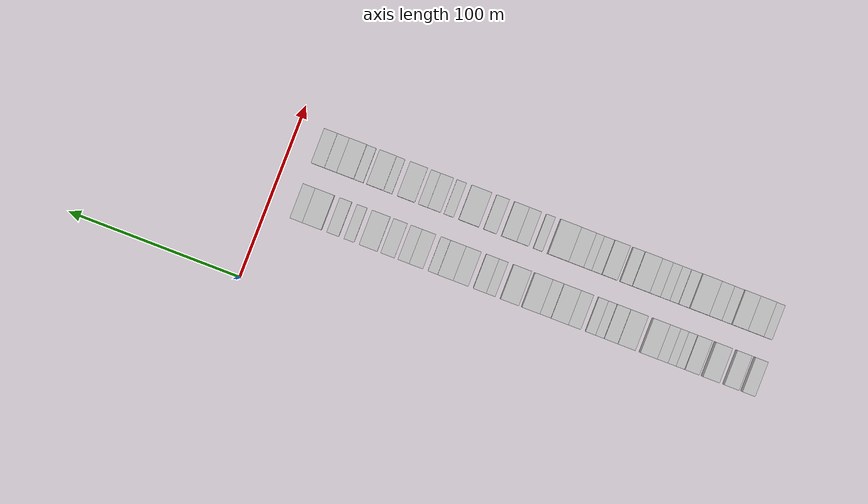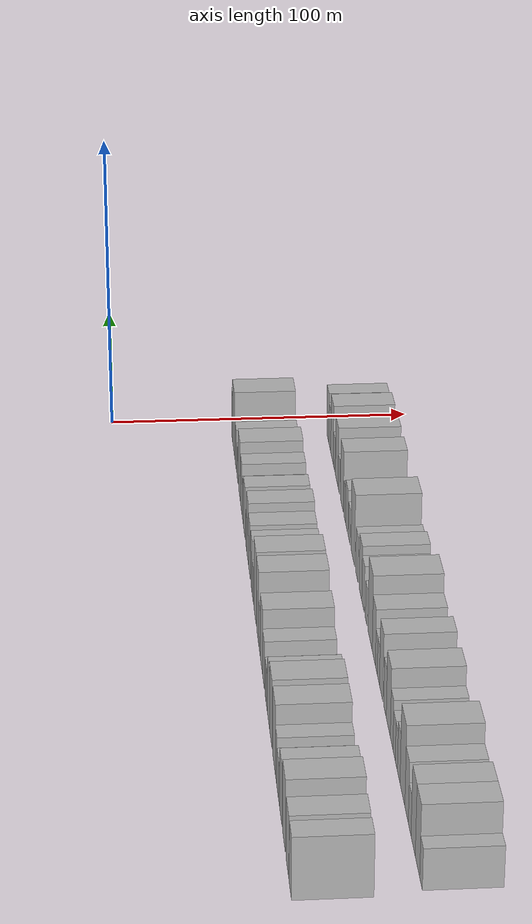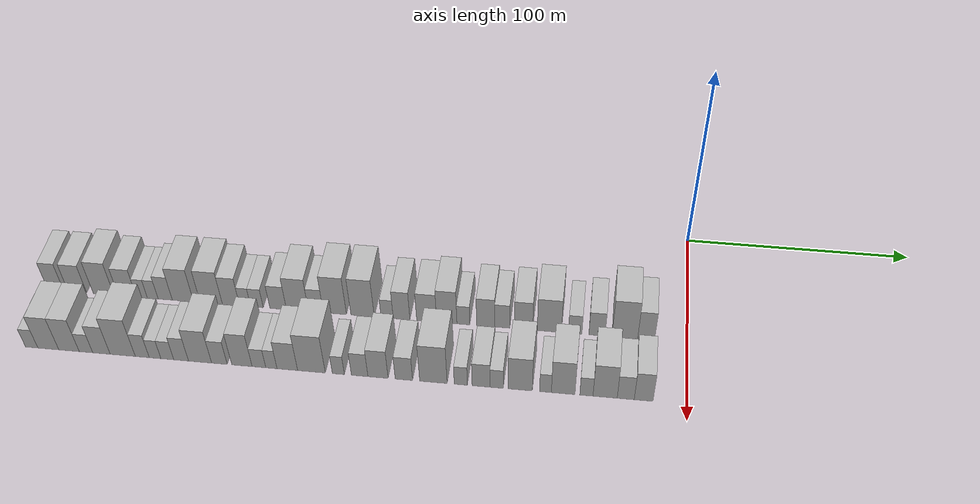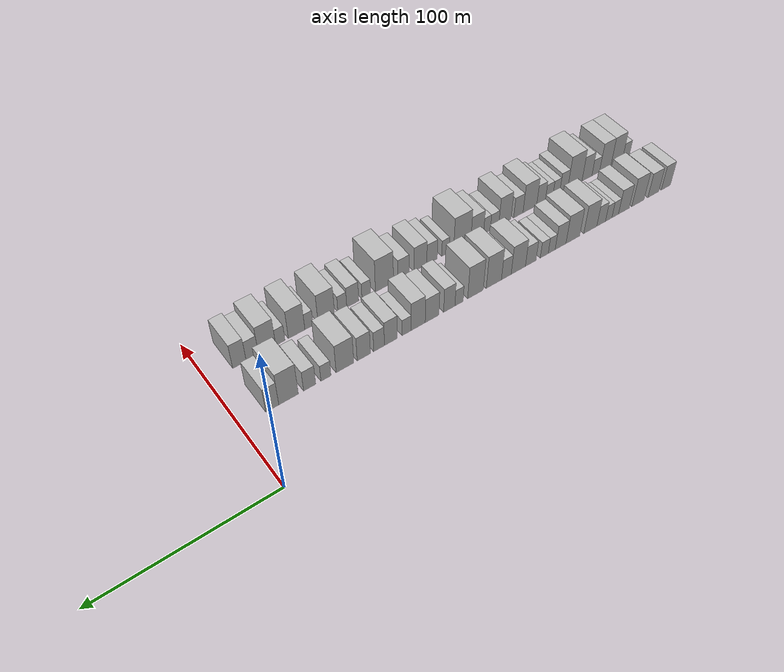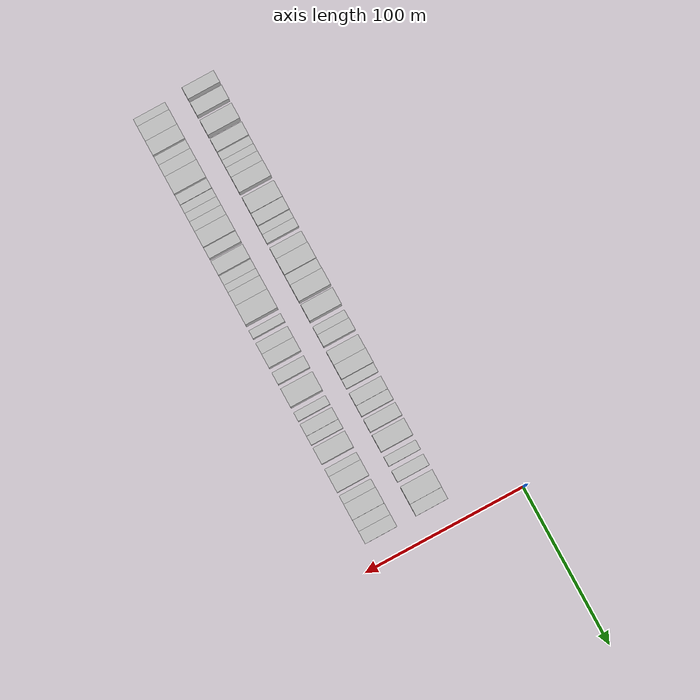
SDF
<sdf version="1.6">
 <world name="default">
  <model name="building_1">
   <static>1</static>
   <pose>50.0000 -280.3439 0 0.000000 0.000000 0.000000</pose>
   <link name="link">
    <pose>0 0 9.00 0 0 0</pose>
    <collision name="collision"><geometry><box><size>20.0000 7.3122 18.0000</size></box></geometry></collision>
    <visual name="visual">
     <cast_shadows>0</cast_shadows>
     <geometry><box><size>20.0000 7.3122 18.0000</size></box></geometry>
     <material>
      <script>
       <uri>model://HANNAS_wall/materials/scripts</uri>
       <uri>model://HANNAS_wall/materials/textures</uri>
       <name>vrc/HANNAS_wall</name>
      </script>
     </material>
    </visual>
   </link>
  </model>
  <model name="building_2">
   <static>1</static>
   <pose>50.0000 -270.4074 0 0.000000 0.000000 0.000000</pose>
   <link name="link">
    <pose>0 0 9.00 0 0 0</pose>
    <collision name="collision"><geometry><box><size>20.0000 8.5608 18.0000</size></box></geometry></collision>
    <visual name="visual">
     <cast_shadows>0</cast_shadows>
     <geometry><box><size>20.0000 8.5608 18.0000</size></box></geometry>
     <material>
      <script>
       <uri>model://HANNAS_wall/materials/scripts</uri>
       <uri>model://HANNAS_wall/materials/textures</uri>
       <name>vrc/HANNAS_wall</name>
      </script>
     </material>
    </visual>
   </link>
  </model>
  <model name="building_3">
   <static>1</static>
   <pose>50.0000 -258.3711 0 0.000000 0.000000 0.000000</pose>
   <link name="link">
    <pose>0 0 10.50 0 0 0</pose>
    <collision name="collision"><geometry><box><size>20.0000 9.5118 21.0000</size></box></geometry></collision>
    <visual name="visual">
     <cast_shadows>0</cast_shadows>
     <geometry><box><size>20.0000 9.5118 21.0000</size></box></geometry>
     <material>
      <script>
       <uri>model://HANNAS_wall/materials/scripts</uri>
       <uri>model://HANNAS_wall/materials/textures</uri>
       <name>vrc/HANNAS_wall</name>
      </script>
     </material>
    </visual>
   </link>
  </model>
  <model name="building_4">
   <static>1</static>
   <pose>50.0000 -247.4853 0 0.000000 0.000000 0.000000</pose>
   <link name="link">
    <pose>0 0 9.00 0 0 0</pose>
    <collision name="collision"><geometry><box><size>20.0000 8.2598 18.0000</size></box></geometry></collision>
    <visual name="visual">
     <cast_shadows>0</cast_shadows>
     <geometry><box><size>20.0000 8.2598 18.0000</size></box></geometry>
     <material>
      <script>
       <uri>model://HANNAS_wall/materials/scripts</uri>
       <uri>model://HANNAS_wall/materials/textures</uri>
       <name>vrc/HANNAS_wall</name>
      </script>
     </material>
    </visual>
   </link>
  </model>
  <model name="building_5">
   <static>1</static>
   <pose>50.0000 -240.8686 0 0.000000 0.000000 0.000000</pose>
   <link name="link">
    <pose>0 0 6.00 0 0 0</pose>
    <collision name="collision"><geometry><box><size>20.0000 4.9736 12.0000</size></box></geometry></collision>
    <visual name="visual">
     <cast_shadows>0</cast_shadows>
     <geometry><box><size>20.0000 4.9736 12.0000</size></box></geometry>
     <material>
      <script>
       <uri>model://HANNAS_wall/materials/scripts</uri>
       <uri>model://HANNAS_wall/materials/textures</uri>
       <name>vrc/HANNAS_wall</name>
      </script>
     </material>
    </visual>
   </link>
  </model>
  <model name="building_6">
   <static>1</static>
   <pose>50.0000 -235.9490 0 0.000000 0.000000 0.000000</pose>
   <link name="link">
    <pose>0 0 6.00 0 0 0</pose>
    <collision name="collision"><geometry><box><size>20.0000 4.8657 12.0000</size></box></geometry></collision>
    <visual name="visual">
     <cast_shadows>0</cast_shadows>
     <geometry><box><size>20.0000 4.8657 12.0000</size></box></geometry>
     <material>
      <script>
       <uri>model://HANNAS_wall/materials/scripts</uri>
       <uri>model://HANNAS_wall/materials/textures</uri>
       <name>vrc/HANNAS_wall</name>
      </script>
     </material>
    </visual>
   </link>
  </model>
  <model name="building_7">
   <static>1</static>
   <pose>50.0000 -230.2777 0 0.000000 0.000000 0.000000</pose>
   <link name="link">
    <pose>0 0 7.50 0 0 0</pose>
    <collision name="collision"><geometry><box><size>20.0000 6.4767 15.0000</size></box></geometry></collision>
    <visual name="visual">
     <cast_shadows>0</cast_shadows>
     <geometry><box><size>20.0000 6.4767 15.0000</size></box></geometry>
     <material>
      <script>
       <uri>model://HANNAS_wall/materials/scripts</uri>
       <uri>model://HANNAS_wall/materials/textures</uri>
       <name>vrc/HANNAS_wall</name>
      </script>
     </material>
    </visual>
   </link>
  </model>
  <model name="building_8">
   <static>1</static>
   <pose>50.0000 -222.2050 0 0.000000 0.000000 0.000000</pose>
   <link name="link">
    <pose>0 0 10.50 0 0 0</pose>
    <collision name="collision"><geometry><box><size>20.0000 9.6688 21.0000</size></box></geometry></collision>
    <visual name="visual">
     <cast_shadows>0</cast_shadows>
     <geometry><box><size>20.0000 9.6688 21.0000</size></box></geometry>
     <material>
      <script>
       <uri>model://HANNAS_wall/materials/scripts</uri>
       <uri>model://HANNAS_wall/materials/textures</uri>
       <name>vrc/HANNAS_wall</name>
      </script>
     </material>
    </visual>
   </link>
  </model>
  <model name="building_9">
   <static>1</static>
   <pose>50.0000 -209.3454 0 0.000000 0.000000 0.000000</pose>
   <link name="link">
    <pose>0 0 10.50 0 0 0</pose>
    <collision name="collision"><geometry><box><size>20.0000 10.0503 21.0000</size></box></geometry></collision>
    <visual name="visual">
     <cast_shadows>0</cast_shadows>
     <geometry><box><size>20.0000 10.0503 21.0000</size></box></geometry>
     <material>
      <script>
       <uri>model://HANNAS_wall/materials/scripts</uri>
       <uri>model://HANNAS_wall/materials/textures</uri>
       <name>vrc/HANNAS_wall</name>
      </script>
     </material>
    </visual>
   </link>
  </model>
  <model name="building_10">
   <static>1</static>
   <pose>50.0000 -200.4345 0 0.000000 0.000000 0.000000</pose>
   <link name="link">
    <pose>0 0 9.00 0 0 0</pose>
    <collision name="collision"><geometry><box><size>20.0000 7.7715 18.0000</size></box></geometry></collision>
    <visual name="visual">
     <cast_shadows>0</cast_shadows>
     <geometry><box><size>20.0000 7.7715 18.0000</size></box></geometry>
     <material>
      <script>
       <uri>model://HANNAS_wall/materials/scripts</uri>
       <uri>model://HANNAS_wall/materials/textures</uri>
       <name>vrc/HANNAS_wall</name>
      </script>
     </material>
    </visual>
   </link>
  </model>
  <model name="building_11">
   <static>1</static>
   <pose>50.0000 -194.0659 0 0.000000 0.000000 0.000000</pose>
   <link name="link">
    <pose>0 0 6.00 0 0 0</pose>
    <collision name="collision"><geometry><box><size>20.0000 4.9657 12.0000</size></box></geometry></collision>
    <visual name="visual">
     <cast_shadows>0</cast_shadows>
     <geometry><box><size>20.0000 4.9657 12.0000</size></box></geometry>
     <material>
      <script>
       <uri>model://HANNAS_wall/materials/scripts</uri>
       <uri>model://HANNAS_wall/materials/textures</uri>
       <name>vrc/HANNAS_wall</name>
      </script>
     </material>
    </visual>
   </link>
  </model>
  <model name="building_12">
   <static>1</static>
   <pose>50.0000 -188.7464 0 0.000000 0.000000 0.000000</pose>
   <link name="link">
    <pose>0 0 6.00 0 0 0</pose>
    <collision name="collision"><geometry><box><size>20.0000 5.6733 12.0000</size></box></geometry></collision>
    <visual name="visual">
     <cast_shadows>0</cast_shadows>
     <geometry><box><size>20.0000 5.6733 12.0000</size></box></geometry>
     <material>
      <script>
       <uri>model://HANNAS_wall/materials/scripts</uri>
       <uri>model://HANNAS_wall/materials/textures</uri>
       <name>vrc/HANNAS_wall</name>
      </script>
     </material>
    </visual>
   </link>
  </model>
  <model name="building_13">
   <static>1</static>
   <pose>50.0000 -179.1969 0 0.000000 0.000000 0.000000</pose>
   <link name="link">
    <pose>0 0 7.50 0 0 0</pose>
    <collision name="collision"><geometry><box><size>20.0000 7.4257 15.0000</size></box></geometry></collision>
    <visual name="visual">
     <cast_shadows>0</cast_shadows>
     <geometry><box><size>20.0000 7.4257 15.0000</size></box></geometry>
     <material>
      <script>
       <uri>model://HANNAS_wall/materials/scripts</uri>
       <uri>model://HANNAS_wall/materials/textures</uri>
       <name>vrc/HANNAS_wall</name>
      </script>
     </material>
    </visual>
   </link>
  </model>
  <model name="building_14">
   <static>1</static>
   <pose>50.0000 -170.5419 0 0.000000 0.000000 0.000000</pose>
   <link name="link">
    <pose>0 0 10.50 0 0 0</pose>
    <collision name="collision"><geometry><box><size>20.0000 9.8844 21.0000</size></box></geometry></collision>
    <visual name="visual">
     <cast_shadows>0</cast_shadows>
     <geometry><box><size>20.0000 9.8844 21.0000</size></box></geometry>
     <material>
      <script>
       <uri>model://HANNAS_wall/materials/scripts</uri>
       <uri>model://HANNAS_wall/materials/textures</uri>
       <name>vrc/HANNAS_wall</name>
      </script>
     </material>
    </visual>
   </link>
  </model>
  <model name="building_15">
   <static>1</static>
   <pose>50.0000 -162.2782 0 0.000000 0.000000 0.000000</pose>
   <link name="link">
    <pose>0 0 7.50 0 0 0</pose>
    <collision name="collision"><geometry><box><size>20.0000 6.6430 15.0000</size></box></geometry></collision>
    <visual name="visual">
     <cast_shadows>0</cast_shadows>
     <geometry><box><size>20.0000 6.6430 15.0000</size></box></geometry>
     <material>
      <script>
       <uri>model://HANNAS_wall/materials/scripts</uri>
       <uri>model://HANNAS_wall/materials/textures</uri>
       <name>vrc/HANNAS_wall</name>
      </script>
     </material>
    </visual>
   </link>
  </model>
  <model name="building_16">
   <static>1</static>
   <pose>50.0000 -153.8165 0 0.000000 0.000000 0.000000</pose>
   <link name="link">
    <pose>0 0 12.00 0 0 0</pose>
    <collision name="collision"><geometry><box><size>20.0000 10.2804 24.0000</size></box></geometry></collision>
    <visual name="visual">
     <cast_shadows>0</cast_shadows>
     <geometry><box><size>20.0000 10.2804 24.0000</size></box></geometry>
     <material>
      <script>
       <uri>model://HANNAS_wall/materials/scripts</uri>
       <uri>model://HANNAS_wall/materials/textures</uri>
       <name>vrc/HANNAS_wall</name>
      </script>
     </material>
    </visual>
   </link>
  </model>
  <model name="building_17">
   <static>1</static>
   <pose>50.0000 -141.4898 0 0.000000 0.000000 0.000000</pose>
   <link name="link">
    <pose>0 0 12.00 0 0 0</pose>
    <collision name="collision"><geometry><box><size>20.0000 10.3730 24.0000</size></box></geometry></collision>
    <visual name="visual">
     <cast_shadows>0</cast_shadows>
     <geometry><box><size>20.0000 10.3730 24.0000</size></box></geometry>
     <material>
      <script>
       <uri>model://HANNAS_wall/materials/scripts</uri>
       <uri>model://HANNAS_wall/materials/textures</uri>
       <name>vrc/HANNAS_wall</name>
      </script>
     </material>
    </visual>
   </link>
  </model>
  <model name="building_18">
   <static>1</static>
   <pose>50.0000 -130.6135 0 0.000000 0.000000 0.000000</pose>
   <link name="link">
    <pose>0 0 6.00 0 0 0</pose>
    <collision name="collision"><geometry><box><size>20.0000 5.3796 12.0000</size></box></geometry></collision>
    <visual name="visual">
     <cast_shadows>0</cast_shadows>
     <geometry><box><size>20.0000 5.3796 12.0000</size></box></geometry>
     <material>
      <script>
       <uri>model://HANNAS_wall/materials/scripts</uri>
       <uri>model://HANNAS_wall/materials/textures</uri>
       <name>vrc/HANNAS_wall</name>
      </script>
     </material>
    </visual>
   </link>
  </model>
  <model name="building_19">
   <static>1</static>
   <pose>50.0000 -124.2336 0 0.000000 0.000000 0.000000</pose>
   <link name="link">
    <pose>0 0 9.00 0 0 0</pose>
    <collision name="collision"><geometry><box><size>20.0000 7.3801 18.0000</size></box></geometry></collision>
    <visual name="visual">
     <cast_shadows>0</cast_shadows>
     <geometry><box><size>20.0000 7.3801 18.0000</size></box></geometry>
     <material>
      <script>
       <uri>model://HANNAS_wall/materials/scripts</uri>
       <uri>model://HANNAS_wall/materials/textures</uri>
       <name>vrc/HANNAS_wall</name>
      </script>
     </material>
    </visual>
   </link>
  </model>
  <model name="building_20">
   <static>1</static>
   <pose>50.0000 -113.1429 0 0.000000 0.000000 0.000000</pose>
   <link name="link">
    <pose>0 0 9.00 0 0 0</pose>
    <collision name="collision"><geometry><box><size>20.0000 8.8013 18.0000</size></box></geometry></collision>
    <visual name="visual">
     <cast_shadows>0</cast_shadows>
     <geometry><box><size>20.0000 8.8013 18.0000</size></box></geometry>
     <material>
      <script>
       <uri>model://HANNAS_wall/materials/scripts</uri>
       <uri>model://HANNAS_wall/materials/textures</uri>
       <name>vrc/HANNAS_wall</name>
      </script>
     </material>
    </visual>
   </link>
  </model>
  <model name="building_21">
   <static>1</static>
   <pose>50.0000 -104.2943 0 0.000000 0.000000 0.000000</pose>
   <link name="link">
    <pose>0 0 10.50 0 0 0</pose>
    <collision name="collision"><geometry><box><size>20.0000 8.8958 21.0000</size></box></geometry></collision>
    <visual name="visual">
     <cast_shadows>0</cast_shadows>
     <geometry><box><size>20.0000 8.8958 21.0000</size></box></geometry>
     <material>
      <script>
       <uri>model://HANNAS_wall/materials/scripts</uri>
       <uri>model://HANNAS_wall/materials/textures</uri>
       <name>vrc/HANNAS_wall</name>
      </script>
     </material>
    </visual>
   </link>
  </model>
  <model name="building_22">
   <static>1</static>
   <pose>50.0000 -97.0274 0 0.000000 0.000000 0.000000</pose>
   <link name="link">
    <pose>0 0 6.00 0 0 0</pose>
    <collision name="collision"><geometry><box><size>20.0000 5.6381 12.0000</size></box></geometry></collision>
    <visual name="visual">
     <cast_shadows>0</cast_shadows>
     <geometry><box><size>20.0000 5.6381 12.0000</size></box></geometry>
     <material>
      <script>
       <uri>model://HANNAS_wall/materials/scripts</uri>
       <uri>model://HANNAS_wall/materials/textures</uri>
       <name>vrc/HANNAS_wall</name>
      </script>
     </material>
    </visual>
   </link>
  </model>
  <model name="building_23">
   <static>1</static>
   <pose>50.0000 -87.2267 0 0.000000 0.000000 0.000000</pose>
   <link name="link">
    <pose>0 0 9.00 0 0 0</pose>
    <collision name="collision"><geometry><box><size>20.0000 7.9634 18.0000</size></box></geometry></collision>
    <visual name="visual">
     <cast_shadows>0</cast_shadows>
     <geometry><box><size>20.0000 7.9634 18.0000</size></box></geometry>
     <material>
      <script>
       <uri>model://HANNAS_wall/materials/scripts</uri>
       <uri>model://HANNAS_wall/materials/textures</uri>
       <name>vrc/HANNAS_wall</name>
      </script>
     </material>
    </visual>
   </link>
  </model>
  <model name="building_24">
   <static>1</static>
   <pose>50.0000 -79.9753 0 0.000000 0.000000 0.000000</pose>
   <link name="link">
    <pose>0 0 7.50 0 0 0</pose>
    <collision name="collision"><geometry><box><size>20.0000 6.5394 15.0000</size></box></geometry></collision>
    <visual name="visual">
     <cast_shadows>0</cast_shadows>
     <geometry><box><size>20.0000 6.5394 15.0000</size></box></geometry>
     <material>
      <script>
       <uri>model://HANNAS_wall/materials/scripts</uri>
       <uri>model://HANNAS_wall/materials/textures</uri>
       <name>vrc/HANNAS_wall</name>
      </script>
     </material>
    </visual>
   </link>
  </model>
  <model name="building_25">
   <static>1</static>
   <pose>50.0000 -70.7188 0 0.000000 0.000000 0.000000</pose>
   <link name="link">
    <pose>0 0 9.00 0 0 0</pose>
    <collision name="collision"><geometry><box><size>20.0000 7.9738 18.0000</size></box></geometry></collision>
    <visual name="visual">
     <cast_shadows>0</cast_shadows>
     <geometry><box><size>20.0000 7.9738 18.0000</size></box></geometry>
     <material>
      <script>
       <uri>model://HANNAS_wall/materials/scripts</uri>
       <uri>model://HANNAS_wall/materials/textures</uri>
       <name>vrc/HANNAS_wall</name>
      </script>
     </material>
    </visual>
   </link>
  </model>
  <model name="building_26">
   <static>1</static>
   <pose>50.0000 -59.4857 0 0.000000 0.000000 0.000000</pose>
   <link name="link">
    <pose>0 0 10.50 0 0 0</pose>
    <collision name="collision"><geometry><box><size>20.0000 10.4924 21.0000</size></box></geometry></collision>
    <visual name="visual">
     <cast_shadows>0</cast_shadows>
     <geometry><box><size>20.0000 10.4924 21.0000</size></box></geometry>
     <material>
      <script>
       <uri>model://HANNAS_wall/materials/scripts</uri>
       <uri>model://HANNAS_wall/materials/textures</uri>
       <name>vrc/HANNAS_wall</name>
      </script>
     </material>
    </visual>
   </link>
  </model>
  <model name="building_27">
   <static>1</static>
   <pose>50.0000 -48.3004 0 0.000000 0.000000 0.000000</pose>
   <link name="link">
    <pose>0 0 6.00 0 0 0</pose>
    <collision name="collision"><geometry><box><size>20.0000 5.8781 12.0000</size></box></geometry></collision>
    <visual name="visual">
     <cast_shadows>0</cast_shadows>
     <geometry><box><size>20.0000 5.8781 12.0000</size></box></geometry>
     <material>
      <script>
       <uri>model://HANNAS_wall/materials/scripts</uri>
       <uri>model://HANNAS_wall/materials/textures</uri>
       <name>vrc/HANNAS_wall</name>
      </script>
     </material>
    </visual>
   </link>
  </model>
  <model name="building_28">
   <static>1</static>
   <pose>50.0000 -38.8582 0 0.000000 0.000000 0.000000</pose>
   <link name="link">
    <pose>0 0 7.50 0 0 0</pose>
    <collision name="collision"><geometry><box><size>20.0000 7.0065 15.0000</size></box></geometry></collision>
    <visual name="visual">
     <cast_shadows>0</cast_shadows>
     <geometry><box><size>20.0000 7.0065 15.0000</size></box></geometry>
     <material>
      <script>
       <uri>model://HANNAS_wall/materials/scripts</uri>
       <uri>model://HANNAS_wall/materials/textures</uri>
       <name>vrc/HANNAS_wall</name>
      </script>
     </material>
    </visual>
   </link>
  </model>
  <model name="building_29">
   <static>1</static>
   <pose>50.0000 -26.8399 0 0.000000 0.000000 0.000000</pose>
   <link name="link">
    <pose>0 0 12.00 0 0 0</pose>
    <collision name="collision"><geometry><box><size>20.0000 11.0300 24.0000</size></box></geometry></collision>
    <visual name="visual">
     <cast_shadows>0</cast_shadows>
     <geometry><box><size>20.0000 11.0300 24.0000</size></box></geometry>
     <material>
      <script>
       <uri>model://HANNAS_wall/materials/scripts</uri>
       <uri>model://HANNAS_wall/materials/textures</uri>
       <name>vrc/HANNAS_wall</name>
      </script>
     </material>
    </visual>
   </link>
  </model>
  <model name="building_30">
   <static>1</static>
   <pose>50.0000 -17.6912 0 0.000000 0.000000 0.000000</pose>
   <link name="link">
    <pose>0 0 9.00 0 0 0</pose>
    <collision name="collision"><geometry><box><size>20.0000 7.2674 18.0000</size></box></geometry></collision>
    <visual name="visual">
     <cast_shadows>0</cast_shadows>
     <geometry><box><size>20.0000 7.2674 18.0000</size></box></geometry>
     <material>
      <script>
       <uri>model://HANNAS_wall/materials/scripts</uri>
       <uri>model://HANNAS_wall/materials/textures</uri>
       <name>vrc/HANNAS_wall</name>
      </script>
     </material>
    </visual>
   </link>
  </model>
  <model name="building_63">
   <static>1</static>
   <pose>82.0000 -279.2572 0 0.000000 0.000000 0.000000</pose>
   <link name="link">
    <pose>0 0 6.00 0 0 0</pose>
    <collision name="collision"><geometry><box><size>20.0000 5.4857 12.0000</size></box></geometry></collision>
    <visual name="visual">
     <cast_shadows>0</cast_shadows>
     <geometry><box><size>20.0000 5.4857 12.0000</size></box></geometry>
     <material>
      <script>
       <uri>model://HANNAS_wall/materials/scripts</uri>
       <uri>model://HANNAS_wall/materials/textures</uri>
       <name>vrc/HANNAS_wall</name>
      </script>
     </material>
    </visual>
   </link>
  </model>
  <model name="building_64">
   <static>1</static>
   <pose>82.0000 -271.8987 0 0.000000 0.000000 0.000000</pose>
   <link name="link">
    <pose>0 0 10.50 0 0 0</pose>
    <collision name="collision"><geometry><box><size>20.0000 9.2312 21.0000</size></box></geometry></collision>
    <visual name="visual">
     <cast_shadows>0</cast_shadows>
     <geometry><box><size>20.0000 9.2312 21.0000</size></box></geometry>
     <material>
      <script>
       <uri>model://HANNAS_wall/materials/scripts</uri>
       <uri>model://HANNAS_wall/materials/textures</uri>
       <name>vrc/HANNAS_wall</name>
      </script>
     </material>
    </visual>
   </link>
  </model>
  <model name="building_65">
   <static>1</static>
   <pose>82.0000 -262.7823 0 0.000000 0.000000 0.000000</pose>
   <link name="link">
    <pose>0 0 10.50 0 0 0</pose>
    <collision name="collision"><geometry><box><size>20.0000 9.0018 21.0000</size></box></geometry></collision>
    <visual name="visual">
     <cast_shadows>0</cast_shadows>
     <geometry><box><size>20.0000 9.0018 21.0000</size></box></geometry>
     <material>
      <script>
       <uri>model://HANNAS_wall/materials/scripts</uri>
       <uri>model://HANNAS_wall/materials/textures</uri>
       <name>vrc/HANNAS_wall</name>
      </script>
     </material>
    </visual>
   </link>
  </model>
  <model name="building_66">
   <static>1</static>
   <pose>82.0000 -255.3013 0 0.000000 0.000000 0.000000</pose>
   <link name="link">
    <pose>0 0 6.00 0 0 0</pose>
    <collision name="collision"><geometry><box><size>20.0000 5.9601 12.0000</size></box></geometry></collision>
    <visual name="visual">
     <cast_shadows>0</cast_shadows>
     <geometry><box><size>20.0000 5.9601 12.0000</size></box></geometry>
     <material>
      <script>
       <uri>model://HANNAS_wall/materials/scripts</uri>
       <uri>model://HANNAS_wall/materials/textures</uri>
       <name>vrc/HANNAS_wall</name>
      </script>
     </material>
    </visual>
   </link>
  </model>
  <model name="building_67">
   <static>1</static>
   <pose>82.0000 -248.4824 0 0.000000 0.000000 0.000000</pose>
   <link name="link">
    <pose>0 0 9.00 0 0 0</pose>
    <collision name="collision"><geometry><box><size>20.0000 7.6778 18.0000</size></box></geometry></collision>
    <visual name="visual">
     <cast_shadows>0</cast_shadows>
     <geometry><box><size>20.0000 7.6778 18.0000</size></box></geometry>
     <material>
      <script>
       <uri>model://HANNAS_wall/materials/scripts</uri>
       <uri>model://HANNAS_wall/materials/textures</uri>
       <name>vrc/HANNAS_wall</name>
      </script>
     </material>
    </visual>
   </link>
  </model>
  <model name="building_68">
   <static>1</static>
   <pose>82.0000 -239.1458 0 0.000000 0.000000 0.000000</pose>
   <link name="link">
    <pose>0 0 12.00 0 0 0</pose>
    <collision name="collision"><geometry><box><size>20.0000 10.9953 24.0000</size></box></geometry></collision>
    <visual name="visual">
     <cast_shadows>0</cast_shadows>
     <geometry><box><size>20.0000 10.9953 24.0000</size></box></geometry>
     <material>
      <script>
       <uri>model://HANNAS_wall/materials/scripts</uri>
       <uri>model://HANNAS_wall/materials/textures</uri>
       <name>vrc/HANNAS_wall</name>
      </script>
     </material>
    </visual>
   </link>
  </model>
  <model name="building_69">
   <static>1</static>
   <pose>82.0000 -230.5927 0 0.000000 0.000000 0.000000</pose>
   <link name="link">
    <pose>0 0 7.50 0 0 0</pose>
    <collision name="collision"><geometry><box><size>20.0000 6.1108 15.0000</size></box></geometry></collision>
    <visual name="visual">
     <cast_shadows>0</cast_shadows>
     <geometry><box><size>20.0000 6.1108 15.0000</size></box></geometry>
     <material>
      <script>
       <uri>model://HANNAS_wall/materials/scripts</uri>
       <uri>model://HANNAS_wall/materials/textures</uri>
       <name>vrc/HANNAS_wall</name>
      </script>
     </material>
    </visual>
   </link>
  </model>
  <model name="building_70">
   <static>1</static>
   <pose>82.0000 -224.9898 0 0.000000 0.000000 0.000000</pose>
   <link name="link">
    <pose>0 0 6.00 0 0 0</pose>
    <collision name="collision"><geometry><box><size>20.0000 5.0950 12.0000</size></box></geometry></collision>
    <visual name="visual">
     <cast_shadows>0</cast_shadows>
     <geometry><box><size>20.0000 5.0950 12.0000</size></box></geometry>
     <material>
      <script>
       <uri>model://HANNAS_wall/materials/scripts</uri>
       <uri>model://HANNAS_wall/materials/textures</uri>
       <name>vrc/HANNAS_wall</name>
      </script>
     </material>
    </visual>
   </link>
  </model>
  <model name="building_71">
   <static>1</static>
   <pose>82.0000 -219.6435 0 0.000000 0.000000 0.000000</pose>
   <link name="link">
    <pose>0 0 6.00 0 0 0</pose>
    <collision name="collision"><geometry><box><size>20.0000 5.5976 12.0000</size></box></geometry></collision>
    <visual name="visual">
     <cast_shadows>0</cast_shadows>
     <geometry><box><size>20.0000 5.5976 12.0000</size></box></geometry>
     <material>
      <script>
       <uri>model://HANNAS_wall/materials/scripts</uri>
       <uri>model://HANNAS_wall/materials/textures</uri>
       <name>vrc/HANNAS_wall</name>
      </script>
     </material>
    </visual>
   </link>
  </model>
  <model name="building_72">
   <static>1</static>
   <pose>82.0000 -213.6274 0 0.000000 0.000000 0.000000</pose>
   <link name="link">
    <pose>0 0 7.50 0 0 0</pose>
    <collision name="collision"><geometry><box><size>20.0000 6.4348 15.0000</size></box></geometry></collision>
    <visual name="visual">
     <cast_shadows>0</cast_shadows>
     <geometry><box><size>20.0000 6.4348 15.0000</size></box></geometry>
     <material>
      <script>
       <uri>model://HANNAS_wall/materials/scripts</uri>
       <uri>model://HANNAS_wall/materials/textures</uri>
       <name>vrc/HANNAS_wall</name>
      </script>
     </material>
    </visual>
   </link>
  </model>
  <model name="building_73">
   <static>1</static>
   <pose>82.0000 -205.4048 0 0.000000 0.000000 0.000000</pose>
   <link name="link">
    <pose>0 0 10.50 0 0 0</pose>
    <collision name="collision"><geometry><box><size>20.0000 10.0103 21.0000</size></box></geometry></collision>
    <visual name="visual">
     <cast_shadows>0</cast_shadows>
     <geometry><box><size>20.0000 10.0103 21.0000</size></box></geometry>
     <material>
      <script>
       <uri>model://HANNAS_wall/materials/scripts</uri>
       <uri>model://HANNAS_wall/materials/textures</uri>
       <name>vrc/HANNAS_wall</name>
      </script>
     </material>
    </visual>
   </link>
  </model>
  <model name="building_74">
   <static>1</static>
   <pose>82.0000 -197.0222 0 0.000000 0.000000 0.000000</pose>
   <link name="link">
    <pose>0 0 7.50 0 0 0</pose>
    <collision name="collision"><geometry><box><size>20.0000 6.7550 15.0000</size></box></geometry></collision>
    <visual name="visual">
     <cast_shadows>0</cast_shadows>
     <geometry><box><size>20.0000 6.7550 15.0000</size></box></geometry>
     <material>
      <script>
       <uri>model://HANNAS_wall/materials/scripts</uri>
       <uri>model://HANNAS_wall/materials/textures</uri>
       <name>vrc/HANNAS_wall</name>
      </script>
     </material>
    </visual>
   </link>
  </model>
  <model name="building_75">
   <static>1</static>
   <pose>82.0000 -187.2619 0 0.000000 0.000000 0.000000</pose>
   <link name="link">
    <pose>0 0 10.50 0 0 0</pose>
    <collision name="collision"><geometry><box><size>20.0000 8.7655 21.0000</size></box></geometry></collision>
    <visual name="visual">
     <cast_shadows>0</cast_shadows>
     <geometry><box><size>20.0000 8.7655 21.0000</size></box></geometry>
     <material>
      <script>
       <uri>model://HANNAS_wall/materials/scripts</uri>
       <uri>model://HANNAS_wall/materials/textures</uri>
       <name>vrc/HANNAS_wall</name>
      </script>
     </material>
    </visual>
   </link>
  </model>
  <model name="building_76">
   <static>1</static>
   <pose>82.0000 -179.9343 0 0.000000 0.000000 0.000000</pose>
   <link name="link">
    <pose>0 0 6.00 0 0 0</pose>
    <collision name="collision"><geometry><box><size>20.0000 5.8898 12.0000</size></box></geometry></collision>
    <visual name="visual">
     <cast_shadows>0</cast_shadows>
     <geometry><box><size>20.0000 5.8898 12.0000</size></box></geometry>
     <material>
      <script>
       <uri>model://HANNAS_wall/materials/scripts</uri>
       <uri>model://HANNAS_wall/materials/textures</uri>
       <name>vrc/HANNAS_wall</name>
      </script>
     </material>
    </visual>
   </link>
  </model>
  <model name="building_77">
   <static>1</static>
   <pose>82.0000 -174.5738 0 0.000000 0.000000 0.000000</pose>
   <link name="link">
    <pose>0 0 6.00 0 0 0</pose>
    <collision name="collision"><geometry><box><size>20.0000 4.8312 12.0000</size></box></geometry></collision>
    <visual name="visual">
     <cast_shadows>0</cast_shadows>
     <geometry><box><size>20.0000 4.8312 12.0000</size></box></geometry>
     <material>
      <script>
       <uri>model://HANNAS_wall/materials/scripts</uri>
       <uri>model://HANNAS_wall/materials/textures</uri>
       <name>vrc/HANNAS_wall</name>
      </script>
     </material>
    </visual>
   </link>
  </model>
  <model name="building_78">
   <static>1</static>
   <pose>82.0000 -167.7329 0 0.000000 0.000000 0.000000</pose>
   <link name="link">
    <pose>0 0 9.00 0 0 0</pose>
    <collision name="collision"><geometry><box><size>20.0000 8.8506 18.0000</size></box></geometry></collision>
    <visual name="visual">
     <cast_shadows>0</cast_shadows>
     <geometry><box><size>20.0000 8.8506 18.0000</size></box></geometry>
     <material>
      <script>
       <uri>model://HANNAS_wall/materials/scripts</uri>
       <uri>model://HANNAS_wall/materials/textures</uri>
       <name>vrc/HANNAS_wall</name>
      </script>
     </material>
    </visual>
   </link>
  </model>
  <model name="building_79">
   <static>1</static>
   <pose>82.0000 -157.3714 0 0.000000 0.000000 0.000000</pose>
   <link name="link">
    <pose>0 0 12.00 0 0 0</pose>
    <collision name="collision"><geometry><box><size>20.0000 11.8723 24.0000</size></box></geometry></collision>
    <visual name="visual">
     <cast_shadows>0</cast_shadows>
     <geometry><box><size>20.0000 11.8723 24.0000</size></box></geometry>
     <material>
      <script>
       <uri>model://HANNAS_wall/materials/scripts</uri>
       <uri>model://HANNAS_wall/materials/textures</uri>
       <name>vrc/HANNAS_wall</name>
      </script>
     </material>
    </visual>
   </link>
  </model>
  <model name="building_80">
   <static>1</static>
   <pose>82.0000 -145.8668 0 0.000000 0.000000 0.000000</pose>
   <link name="link">
    <pose>0 0 6.00 0 0 0</pose>
    <collision name="collision"><geometry><box><size>20.0000 5.1369 12.0000</size></box></geometry></collision>
    <visual name="visual">
     <cast_shadows>0</cast_shadows>
     <geometry><box><size>20.0000 5.1369 12.0000</size></box></geometry>
     <material>
      <script>
       <uri>model://HANNAS_wall/materials/scripts</uri>
       <uri>model://HANNAS_wall/materials/textures</uri>
       <name>vrc/HANNAS_wall</name>
      </script>
     </material>
    </visual>
   </link>
  </model>
  <model name="building_81">
   <static>1</static>
   <pose>82.0000 -136.7809 0 0.000000 0.000000 0.000000</pose>
   <link name="link">
    <pose>0 0 7.50 0 0 0</pose>
    <collision name="collision"><geometry><box><size>20.0000 7.0349 15.0000</size></box></geometry></collision>
    <visual name="visual">
     <cast_shadows>0</cast_shadows>
     <geometry><box><size>20.0000 7.0349 15.0000</size></box></geometry>
     <material>
      <script>
       <uri>model://HANNAS_wall/materials/scripts</uri>
       <uri>model://HANNAS_wall/materials/textures</uri>
       <name>vrc/HANNAS_wall</name>
      </script>
     </material>
    </visual>
   </link>
  </model>
  <model name="building_82">
   <static>1</static>
   <pose>82.0000 -128.9771 0 0.000000 0.000000 0.000000</pose>
   <link name="link">
    <pose>0 0 9.00 0 0 0</pose>
    <collision name="collision"><geometry><box><size>20.0000 8.5726 18.0000</size></box></geometry></collision>
    <visual name="visual">
     <cast_shadows>0</cast_shadows>
     <geometry><box><size>20.0000 8.5726 18.0000</size></box></geometry>
     <material>
      <script>
       <uri>model://HANNAS_wall/materials/scripts</uri>
       <uri>model://HANNAS_wall/materials/textures</uri>
       <name>vrc/HANNAS_wall</name>
      </script>
     </material>
    </visual>
   </link>
  </model>
  <model name="building_83">
   <static>1</static>
   <pose>82.0000 -118.0036 0 0.000000 0.000000 0.000000</pose>
   <link name="link">
    <pose>0 0 7.50 0 0 0</pose>
    <collision name="collision"><geometry><box><size>20.0000 7.3743 15.0000</size></box></geometry></collision>
    <visual name="visual">
     <cast_shadows>0</cast_shadows>
     <geometry><box><size>20.0000 7.3743 15.0000</size></box></geometry>
     <material>
      <script>
       <uri>model://HANNAS_wall/materials/scripts</uri>
       <uri>model://HANNAS_wall/materials/textures</uri>
       <name>vrc/HANNAS_wall</name>
      </script>
     </material>
    </visual>
   </link>
  </model>
  <model name="building_84">
   <static>1</static>
   <pose>82.0000 -105.5310 0 0.000000 0.000000 0.000000</pose>
   <link name="link">
    <pose>0 0 12.00 0 0 0</pose>
    <collision name="collision"><geometry><box><size>20.0000 11.5709 24.0000</size></box></geometry></collision>
    <visual name="visual">
     <cast_shadows>0</cast_shadows>
     <geometry><box><size>20.0000 11.5709 24.0000</size></box></geometry>
     <material>
      <script>
       <uri>model://HANNAS_wall/materials/scripts</uri>
       <uri>model://HANNAS_wall/materials/textures</uri>
       <name>vrc/HANNAS_wall</name>
      </script>
     </material>
    </visual>
   </link>
  </model>
  <model name="building_85">
   <static>1</static>
   <pose>82.0000 -93.9844 0 0.000000 0.000000 0.000000</pose>
   <link name="link">
    <pose>0 0 6.00 0 0 0</pose>
    <collision name="collision"><geometry><box><size>20.0000 5.5224 12.0000</size></box></geometry></collision>
    <visual name="visual">
     <cast_shadows>0</cast_shadows>
     <geometry><box><size>20.0000 5.5224 12.0000</size></box></geometry>
     <material>
      <script>
       <uri>model://HANNAS_wall/materials/scripts</uri>
       <uri>model://HANNAS_wall/materials/textures</uri>
       <name>vrc/HANNAS_wall</name>
      </script>
     </material>
    </visual>
   </link>
  </model>
  <model name="building_86">
   <static>1</static>
   <pose>82.0000 -85.4773 0 0.000000 0.000000 0.000000</pose>
   <link name="link">
    <pose>0 0 7.50 0 0 0</pose>
    <collision name="collision"><geometry><box><size>20.0000 7.4919 15.0000</size></box></geometry></collision>
    <visual name="visual">
     <cast_shadows>0</cast_shadows>
     <geometry><box><size>20.0000 7.4919 15.0000</size></box></geometry>
     <material>
      <script>
       <uri>model://HANNAS_wall/materials/scripts</uri>
       <uri>model://HANNAS_wall/materials/textures</uri>
       <name>vrc/HANNAS_wall</name>
      </script>
     </material>
    </visual>
   </link>
  </model>
  <model name="building_87">
   <static>1</static>
   <pose>82.0000 -78.9606 0 0.000000 0.000000 0.000000</pose>
   <link name="link">
    <pose>0 0 6.00 0 0 0</pose>
    <collision name="collision"><geometry><box><size>20.0000 5.5415 12.0000</size></box></geometry></collision>
    <visual name="visual">
     <cast_shadows>0</cast_shadows>
     <geometry><box><size>20.0000 5.5415 12.0000</size></box></geometry>
     <material>
      <script>
       <uri>model://HANNAS_wall/materials/scripts</uri>
       <uri>model://HANNAS_wall/materials/textures</uri>
       <name>vrc/HANNAS_wall</name>
      </script>
     </material>
    </visual>
   </link>
  </model>
  <model name="building_88">
   <static>1</static>
   <pose>82.0000 -69.1059 0 0.000000 0.000000 0.000000</pose>
   <link name="link">
    <pose>0 0 10.50 0 0 0</pose>
    <collision name="collision"><geometry><box><size>20.0000 10.1678 21.0000</size></box></geometry></collision>
    <visual name="visual">
     <cast_shadows>0</cast_shadows>
     <geometry><box><size>20.0000 10.1678 21.0000</size></box></geometry>
     <material>
      <script>
       <uri>model://HANNAS_wall/materials/scripts</uri>
       <uri>model://HANNAS_wall/materials/textures</uri>
       <name>vrc/HANNAS_wall</name>
      </script>
     </material>
    </visual>
   </link>
  </model>
  <model name="building_89">
   <static>1</static>
   <pose>82.0000 -58.5591 0 0.000000 0.000000 0.000000</pose>
   <link name="link">
    <pose>0 0 6.00 0 0 0</pose>
    <collision name="collision"><geometry><box><size>20.0000 4.9259 12.0000</size></box></geometry></collision>
    <visual name="visual">
     <cast_shadows>0</cast_shadows>
     <geometry><box><size>20.0000 4.9259 12.0000</size></box></geometry>
     <material>
      <script>
       <uri>model://HANNAS_wall/materials/scripts</uri>
       <uri>model://HANNAS_wall/materials/textures</uri>
       <name>vrc/HANNAS_wall</name>
      </script>
     </material>
    </visual>
   </link>
  </model>
  <model name="building_90">
   <static>1</static>
   <pose>82.0000 -51.1862 0 0.000000 0.000000 0.000000</pose>
   <link name="link">
    <pose>0 0 10.50 0 0 0</pose>
    <collision name="collision"><geometry><box><size>20.0000 9.8198 21.0000</size></box></geometry></collision>
    <visual name="visual">
     <cast_shadows>0</cast_shadows>
     <geometry><box><size>20.0000 9.8198 21.0000</size></box></geometry>
     <material>
      <script>
       <uri>model://HANNAS_wall/materials/scripts</uri>
       <uri>model://HANNAS_wall/materials/textures</uri>
       <name>vrc/HANNAS_wall</name>
      </script>
     </material>
    </visual>
   </link>
  </model>
  <model name="building_91">
   <static>1</static>
   <pose>82.0000 -41.5529 0 0.000000 0.000000 0.000000</pose>
   <link name="link">
    <pose>0 0 6.00 0 0 0</pose>
    <collision name="collision"><geometry><box><size>20.0000 5.4469 12.0000</size></box></geometry></collision>
    <visual name="visual">
     <cast_shadows>0</cast_shadows>
     <geometry><box><size>20.0000 5.4469 12.0000</size></box></geometry>
     <material>
      <script>
       <uri>model://HANNAS_wall/materials/scripts</uri>
       <uri>model://HANNAS_wall/materials/textures</uri>
       <name>vrc/HANNAS_wall</name>
      </script>
     </material>
    </visual>
   </link>
  </model>
  <model name="building_92">
   <static>1</static>
   <pose>82.0000 -33.8204 0 0.000000 0.000000 0.000000</pose>
   <link name="link">
    <pose>0 0 10.50 0 0 0</pose>
    <collision name="collision"><geometry><box><size>20.0000 10.0181 21.0000</size></box></geometry></collision>
    <visual name="visual">
     <cast_shadows>0</cast_shadows>
     <geometry><box><size>20.0000 10.0181 21.0000</size></box></geometry>
     <material>
      <script>
       <uri>model://HANNAS_wall/materials/scripts</uri>
       <uri>model://HANNAS_wall/materials/textures</uri>
       <name>vrc/HANNAS_wall</name>
      </script>
     </material>
    </visual>
   </link>
  </model>
  <model name="building_93">
   <static>1</static>
   <pose>82.0000 -25.2947 0 0.000000 0.000000 0.000000</pose>
   <link name="link">
    <pose>0 0 7.50 0 0 0</pose>
    <collision name="collision"><geometry><box><size>20.0000 7.0332 15.0000</size></box></geometry></collision>
    <visual name="visual">
     <cast_shadows>0</cast_shadows>
     <geometry><box><size>20.0000 7.0332 15.0000</size></box></geometry>
     <material>
      <script>
       <uri>model://HANNAS_wall/materials/scripts</uri>
       <uri>model://HANNAS_wall/materials/textures</uri>
       <name>vrc/HANNAS_wall</name>
      </script>
     </material>
    </visual>
   </link>
  </model>
  <model name="building_94">
   <static>1</static>
   <pose>82.0000 -17.9139 0 0.000000 0.000000 0.000000</pose>
   <link name="link">
    <pose>0 0 9.00 0 0 0</pose>
    <collision name="collision"><geometry><box><size>20.0000 7.7284 18.0000</size></box></geometry></collision>
    <visual name="visual">
     <cast_shadows>0</cast_shadows>
     <geometry><box><size>20.0000 7.7284 18.0000</size></box></geometry>
     <material>
      <script>
       <uri>model://HANNAS_wall/materials/scripts</uri>
       <uri>model://HANNAS_wall/materials/textures</uri>
       <name>vrc/HANNAS_wall</name>
      </script>
     </material>
    </visual>
   </link>
  </model>
 </world>
</sdf>
